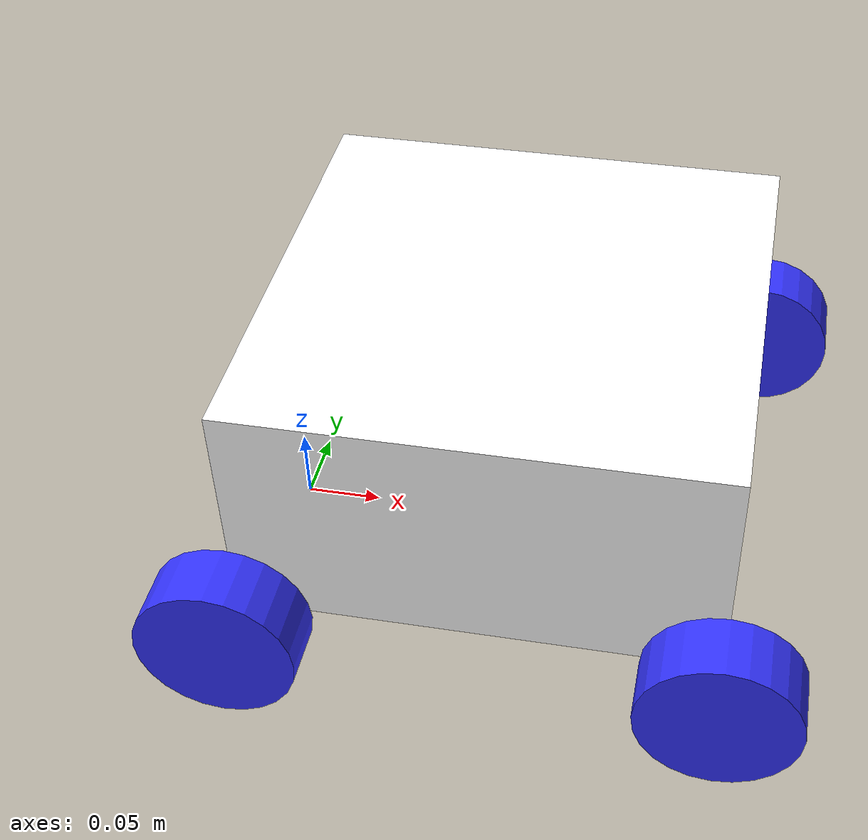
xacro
<?xml version="1.0" encoding="utf-8"?>
<robot xmlns:xacro="http://www.ros.org/wiki/xacro" >

  <xacro:include filename="$(find diffbot_description)/urdf/inertial_macros.xacro" />

  <material name="white">
    <color rgba="1 1 1 1"/>
  </material>

  <material name="orange">
    <color rgba="1 0.3 0.1 1"/>
  </material>

  <material name="blue">
    <color rgba="0.2 0.2 1 1"/>
  </material>

  <!-- BASE FRAME LINK -->
  <link name="base_footprint">
  </link>

  <!-- base_link -->
  <joint name="base_joint" type="fixed">
    <parent link="base_footprint"/>
    <child link="base_link"/>
    <origin xyz="0.3 0 0.05"/>
  </joint>

  <link name="base_link">
    <visual>
      <origin xyz="-0.15 0 0.075"/>
      <geometry>
        <box size="0.3 0.3 0.15"/>
      </geometry>
      <material name="white"/>
    </visual>
    <collision>
      <origin xyz="-0.15 0 0.075"/>
      <geometry>
        <box size="0.3 0.3 0.15"/>
      </geometry>
    </collision>
    <xacro:inertial_box mass="0.5" x="0.3" y="0.3" z="0.15">
      <origin xyz="-0.15 0 0.075" rpy="0 0 0"/>
    </xacro:inertial_box>
  </link>

  <!-- left_wheel -->
  <joint name="left_wheel_joint" type="continuous">
    <parent link="base_link"/>
    <child link="left_wheel"/>
    <origin xyz="0 0.175 0" rpy="-${pi/2} 0 0"/>
    <axis xyz="0 0 1"/>
  </joint>

  <link name="left_wheel">
    <visual>
      <geometry>
        <cylinder radius="0.05" length="0.04"/>
      </geometry>
      <material name="blue"/>
    </visual>
    <collision>
      <geometry>
        <cylinder radius="0.05" length="0.04"/>
      </geometry>
    </collision>
    <xacro:inertial_cylinder mass="0.1" length="0.04" radius="0.05">
      <origin xyz="0 0 0" rpy="0 0 0"/>
    </xacro:inertial_cylinder>
  </link>

  <!-- left_dummy -->
  <joint name="left_dummy_joint" type="continuous">
    <parent link="base_link"/>
    <child link="left_dummy"/>
    <origin xyz="-0.3 0.175 0" rpy="-${pi/2} 0 0"/>
    <axis xyz="0 0 1"/>
  </joint>

  <link name="left_dummy">
    <visual>
      <geometry>
        <cylinder radius="0.05" length="0.04"/>
      </geometry>
      <material name="blue"/>
    </visual>
    <collision>
      <geometry>
        <cylinder radius="0.05" length="0.04"/>
      </geometry>
    </collision>
    <xacro:inertial_cylinder mass="0.1" length="0.04" radius="0.05">
      <origin xyz="0 0 0" rpy="0 0 0"/>
    </xacro:inertial_cylinder>
  </link>

  <!-- right_wheel -->
  <joint name="right_wheel_joint" type="continuous">
    <parent link="base_link"/>
    <child link="right_wheel"/>
    <origin xyz="0 -0.175 0" rpy="${pi/2} 0 0"/>
    <axis xyz="0 0 -1"/>
  </joint>

  <link name="right_wheel">
    <visual>
      <geometry>
        <cylinder radius="0.05" length="0.04"/>
      </geometry>
      <material name="blue"/>
    </visual>
    <collision>
      <geometry>
        <cylinder radius="0.05" length="0.04"/>
      </geometry>
    </collision>
    <xacro:inertial_cylinder mass="0.1" length="0.04" radius="0.05">
      <origin xyz="0 0 0" rpy="0 0 0"/>
    </xacro:inertial_cylinder>
  </link>

  <!-- right_dummy -->
  <joint name="right_dummy_joint" type="continuous">
    <parent link="base_link"/>
    <child link="right_dummy"/>
    <origin xyz="-0.3 -0.175 0" rpy="${pi/2} 0 0"/>
    <axis xyz="0 0 -1"/>
  </joint>

  <link name="right_dummy">
    <visual>
      <geometry>
        <cylinder radius="0.05" length="0.04"/>
      </geometry>
      <material name="blue"/>
    </visual>
    <collision>
      <geometry>
        <cylinder radius="0.05" length="0.04"/>
      </geometry>
    </collision>
    <xacro:inertial_cylinder mass="0.1" length="0.04" radius="0.05">
      <origin xyz="0 0 0" rpy="0 0 0"/>
    </xacro:inertial_cylinder>
  </link>

</robot>
